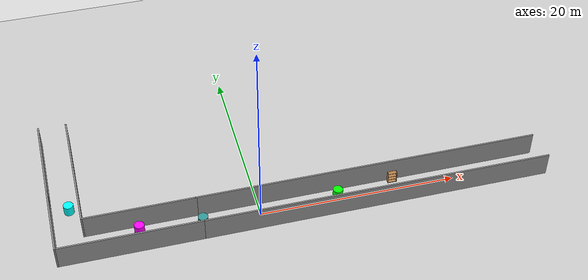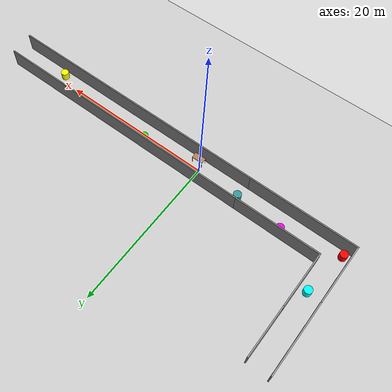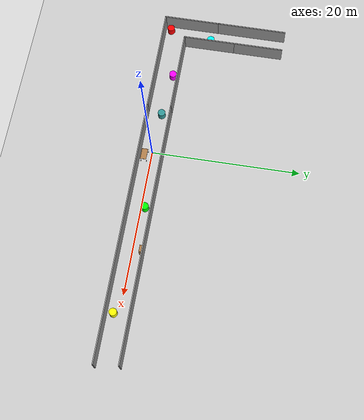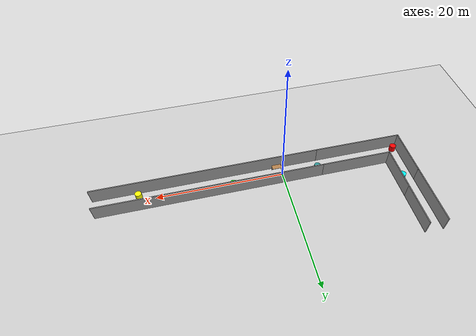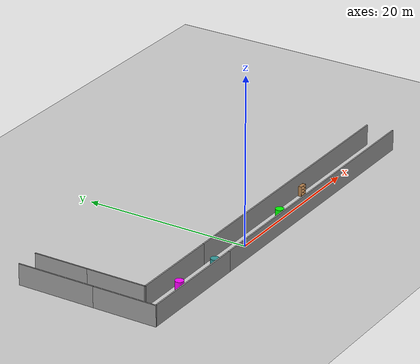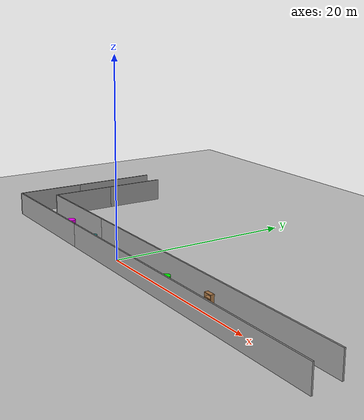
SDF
<sdf version="1.7">
 <world name="default">
  <light name="sun" type="directional">
   <pose>0 0 10 0 -0 0</pose>
   <diffuse>0.8 0.8 0.8 1</diffuse>
   <specular>0.2 0.2 0.2 1</specular>
   <attenuation>
    <range>1000</range>
    <constant>0.9</constant>
    <linear>0.01</linear>
    <quadratic>0.001</quadratic>
   </attenuation>
   <direction>-0.5 0.1 -0.9</direction>
   <spot><inner_angle>0</inner_angle><outer_angle>0</outer_angle><falloff>0</falloff></spot>
  </light>
  <model name="ground_plane">
   <static>1</static>
   <link name="link">
    <collision name="collision">
     <geometry><plane><normal>0 0 1</normal><size>100 100</size></plane></geometry>
     <surface>
      <contact><collide_bitmask>65535</collide_bitmask></contact>
      <friction><ode><mu>100</mu><mu2>50</mu2></ode></friction>
     </surface>
    </collision>
    <visual name="visual">
     <cast_shadows>0</cast_shadows>
     <geometry><plane><normal>0 0 1</normal><size>100 100</size></plane></geometry>
     <material>
      <script><uri>file://media/materials/scripts/gazebo.material</uri><name>Gazebo/Grey</name></script>
     </material>
    </visual>
   </link>
  </model>
  <gravity>0 0 -9.8</gravity>
  <magnetic_field>6e-06 2.3e-05 -4.2e-05</magnetic_field>
  <atmosphere type="adiabatic"/>
  <physics type="ode">
   <max_step_size>0.01</max_step_size>
   <real_time_factor>1</real_time_factor>
   <real_time_update_rate>100</real_time_update_rate>
  </physics>
  <scene><ambient>0.4 0.4 0.4 1</ambient><background>0.7 0.7 0.7 1</background><shadows>1</shadows></scene>
  <audio><device>default</device></audio>
  <spherical_coordinates>
   <surface_model>EARTH_WGS84</surface_model>
   <latitude_deg>0</latitude_deg>
   <longitude_deg>0</longitude_deg>
   <elevation>0</elevation>
   <heading_deg>0</heading_deg>
  </spherical_coordinates>
  <model name="world2">
   <pose>4.7262 6.81622 0 0 -0 0</pose>
   <link name="Wall_12">
    <collision name="Wall_12_Collision">
     <geometry><box><size>7.75 0.15 2.5</size></box></geometry>
     <pose>0 0 1.25 0 -0 0</pose>
    </collision>
    <visual name="Wall_12_Visual">
     <pose>0 0 1.25 0 -0 0</pose>
     <geometry><box><size>7.75 0.15 2.5</size></box></geometry>
     <material>
      <script><uri>file://media/materials/scripts/gazebo.material</uri><name>Gazebo/Grey</name></script>
      <ambient>1 1 1 1</ambient>
     </material>
     <meta><layer>0</layer></meta>
    </visual>
    <pose>-24.6986 -4.675 0 0 -0 1.5708</pose>
   </link>
   <link name="Wall_14">
    <collision name="Wall_14_Collision">
     <geometry><box><size>11.25 0.15 2.5</size></box></geometry>
     <pose>0 0 1.25 0 -0 0</pose>
    </collision>
    <visual name="Wall_14_Visual">
     <pose>0 0 1.25 0 -0 0</pose>
     <geometry><box><size>11.25 0.15 2.5</size></box></geometry>
     <material>
      <script><uri>file://media/materials/scripts/gazebo.material</uri><name>Gazebo/Grey</name></script>
      <ambient>1 1 1 1</ambient>
     </material>
     <meta><layer>0</layer></meta>
    </visual>
    <pose>-16.3037 -5.29947 0 0 -0 3.14159</pose>
   </link>
   <link name="Wall_16">
    <collision name="Wall_16_Collision">
     <geometry><box><size>7.25 0.15 2.5</size></box></geometry>
     <pose>0 0 1.25 0 -0 0</pose>
    </collision>
    <visual name="Wall_16_Visual">
     <pose>0 0 1.25 0 -0 0</pose>
     <geometry><box><size>7.25 0.15 2.5</size></box></geometry>
     <material>
      <script><uri>file://media/materials/scripts/gazebo.material</uri><name>Gazebo/Grey</name></script>
      <ambient>1 1 1 1</ambient>
     </material>
     <meta><layer>0</layer></meta>
    </visual>
    <pose>-21.8537 -1.74947 0 0 -0 1.5708</pose>
   </link>
   <link name="Wall_18">
    <collision name="Wall_18_Collision">
     <geometry><box><size>9.5 0.15 2.5</size></box></geometry>
     <pose>0 0 1.25 0 -0 0</pose>
    </collision>
    <visual name="Wall_18_Visual">
     <pose>0 0 1.25 0 -0 0</pose>
     <geometry><box><size>9.5 0.15 2.5</size></box></geometry>
     <material>
      <script><uri>file://media/materials/scripts/gazebo.material</uri><name>Gazebo/Grey</name></script>
      <ambient>1 1 1 1</ambient>
     </material>
     <meta><layer>0</layer></meta>
    </visual>
    <pose>-24.6986 3.8 0 0 -0 1.5708</pose>
   </link>
   <link name="Wall_20">
    <collision name="Wall_20_Collision">
     <geometry><box><size>6.75 0.15 2.5</size></box></geometry>
     <pose>0 0 1.25 0 -0 0</pose>
    </collision>
    <visual name="Wall_20_Visual">
     <pose>0 0 1.25 0 -0 0</pose>
     <geometry><box><size>6.75 0.15 2.5</size></box></geometry>
     <material>
      <script><uri>file://media/materials/scripts/gazebo.material</uri><name>Gazebo/Grey</name></script>
      <ambient>1 1 1 1</ambient>
     </material>
     <meta><layer>0</layer></meta>
    </visual>
    <pose>-21.8537 5.10053 0 0 -0 1.5708</pose>
   </link>
   <link name="Wall_24">
    <collision name="Wall_24_Collision">
     <geometry><box><size>35.5 0.15 2.5</size></box></geometry>
     <pose>0 0 1.25 0 -0 0</pose>
    </collision>
    <visual name="Wall_24_Visual">
     <pose>0 0 1.25 0 -0 0</pose>
     <geometry><box><size>35.5 0.15 2.5</size></box></geometry>
     <material>
      <script><uri>file://media/materials/scripts/gazebo.material</uri><name>Gazebo/Grey</name></script>
      <ambient>1 1 1 1</ambient>
     </material>
     <meta><layer>0</layer></meta>
    </visual>
    <pose>7.02355 -8.475 0 0 -0 0</pose>
   </link>
   <link name="Wall_27">
    <collision name="Wall_27_Collision">
     <geometry><box><size>35.25 0.15 2.5</size></box></geometry>
     <pose>0 0 1.25 0 -0 0</pose>
    </collision>
    <visual name="Wall_27_Visual">
     <pose>0 0 1.25 0 -0 0</pose>
     <geometry><box><size>35.25 0.15 2.5</size></box></geometry>
     <material>
      <script><uri>file://media/materials/scripts/gazebo.material</uri><name>Gazebo/Grey</name></script>
      <ambient>1 1 1 1</ambient>
     </material>
     <meta><layer>0</layer></meta>
    </visual>
    <pose>6.79625 -5.29947 0 0 -0 0</pose>
   </link>
   <link name="Wall_9">
    <collision name="Wall_9_Collision">
     <geometry><box><size>14.1971 0.15 2.5</size></box></geometry>
     <pose>0 0 1.25 0 -0 0</pose>
    </collision>
    <visual name="Wall_9_Visual">
     <pose>0 0 1.25 0 -0 0</pose>
     <geometry><box><size>14.1971 0.15 2.5</size></box></geometry>
     <material>
      <script><uri>file://media/materials/scripts/gazebo.material</uri><name>Gazebo/Grey</name></script>
      <ambient>1 1 1 1</ambient>
     </material>
     <meta><layer>0</layer></meta>
    </visual>
    <pose>-17.675 -8.475 0 0 -0 3.14159</pose>
   </link>
   <static>1</static>
  </model>
  <model name="bookshelf">
   <static>1</static>
   <link name="link">
    <inertial><mass>1</mass></inertial>
    <collision name="back">
     <pose>0 0.005 0.6 0 -0 0</pose>
     <geometry><box><size>0.9 0.01 1.2</size></box></geometry>
    </collision>
    <visual name="visual1">
     <pose>0 0.005 0.6 0 -0 0</pose>
     <geometry><box><size>0.9 0.01 1.2</size></box></geometry>
     <material>
      <script><uri>file://media/materials/scripts/gazebo.material</uri><name>Gazebo/Wood</name></script>
     </material>
    </visual>
    <collision name="left_side">
     <pose>0.45 -0.195 0.6 0 -0 0</pose>
     <geometry><box><size>0.02 0.4 1.2</size></box></geometry>
    </collision>
    <visual name="visual2">
     <pose>0.45 -0.195 0.6 0 -0 0</pose>
     <geometry><box><size>0.02 0.4 1.2</size></box></geometry>
     <material>
      <script><uri>file://media/materials/scripts/gazebo.material</uri><name>Gazebo/Wood</name></script>
     </material>
    </visual>
    <collision name="right_side">
     <pose>-0.45 -0.195 0.6 0 -0 0</pose>
     <geometry><box><size>0.02 0.4 1.2</size></box></geometry>
    </collision>
    <visual name="visual3">
     <pose>-0.45 -0.195 0.6 0 -0 0</pose>
     <geometry><box><size>0.02 0.4 1.2</size></box></geometry>
     <material>
      <script><uri>file://media/materials/scripts/gazebo.material</uri><name>Gazebo/Wood</name></script>
     </material>
    </visual>
    <collision name="bottom">
     <pose>0 -0.195 0.03 0 -0 0</pose>
     <geometry><box><size>0.88 0.4 0.06</size></box></geometry>
    </collision>
    <visual name="visual4">
     <pose>0 -0.195 0.03 0 -0 0</pose>
     <geometry><box><size>0.88 0.4 0.06</size></box></geometry>
     <material>
      <script><uri>file://media/materials/scripts/gazebo.material</uri><name>Gazebo/Wood</name></script>
     </material>
    </visual>
    <collision name="top">
     <pose>0 -0.195 1.19 0 -0 0</pose>
     <geometry><box><size>0.88 0.4 0.02</size></box></geometry>
    </collision>
    <visual name="visual5">
     <pose>0 -0.195 1.19 0 -0 0</pose>
     <geometry><box><size>0.88 0.4 0.02</size></box></geometry>
     <material>
      <script><uri>file://media/materials/scripts/gazebo.material</uri><name>Gazebo/Wood</name></script>
     </material>
    </visual>
    <collision name="low_shelf">
     <pose>0 -0.195 0.43 0 -0 0</pose>
     <geometry><box><size>0.88 0.4 0.02</size></box></geometry>
    </collision>
    <visual name="visual6">
     <pose>0 -0.195 0.43 0 -0 0</pose>
     <geometry><box><size>0.88 0.4 0.02</size></box></geometry>
     <material>
      <script><uri>file://media/materials/scripts/gazebo.material</uri><name>Gazebo/Wood</name></script>
     </material>
    </visual>
    <collision name="high_shelf">
     <pose>0 -0.195 0.8 0 -0 0</pose>
     <geometry><box><size>0.88 0.4 0.02</size></box></geometry>
    </collision>
    <visual name="visual7">
     <pose>0 -0.195 0.8 0 -0 0</pose>
     <geometry><box><size>0.88 0.4 0.02</size></box></geometry>
     <material>
      <script><uri>file://media/materials/scripts/gazebo.material</uri><name>Gazebo/Wood</name></script>
     </material>
    </visual>
   </link>
   <pose>13.9169 1.35255 0 0 -0 0</pose>
  </model>
  <model name="table">
   <static>1</static>
   <link name="link">
    <collision name="surface">
     <pose>0 0 1 0 -0 0</pose>
     <geometry><box><size>1.5 0.8 0.03</size></box></geometry>
     <surface><friction><ode><mu>0.6</mu><mu2>0.6</mu2></ode></friction></surface>
    </collision>
    <visual name="visual1">
     <pose>0 0 1 0 -0 0</pose>
     <geometry><box><size>1.5 0.8 0.03</size></box></geometry>
     <material>
      <script><uri>file://media/materials/scripts/gazebo.material</uri><name>Gazebo/Wood</name></script>
     </material>
    </visual>
    <collision name="front_left_leg_collision">
     <pose>0.68 0.38 0.5 0 -0 0</pose>
     <geometry><cylinder><radius>0.02</radius><length>1</length></cylinder></geometry>
    </collision>
    <visual name="front_left_leg_visual">
     <pose>0.68 0.38 0.5 0 -0 0</pose>
     <geometry><cylinder><radius>0.02</radius><length>1</length></cylinder></geometry>
     <material>
      <script><uri>file://media/materials/scripts/gazebo.material</uri><name>Gazebo/Grey</name></script>
     </material>
    </visual>
    <collision name="front_right_leg_collision">
     <pose>0.68 -0.38 0.5 0 -0 0</pose>
     <geometry><cylinder><radius>0.02</radius><length>1</length></cylinder></geometry>
    </collision>
    <visual name="front_right_leg_visual">
     <pose>0.68 -0.38 0.5 0 -0 0</pose>
     <geometry><cylinder><radius>0.02</radius><length>1</length></cylinder></geometry>
     <material>
      <script><uri>file://media/materials/scripts/gazebo.material</uri><name>Gazebo/Grey</name></script>
     </material>
    </visual>
    <collision name="back_right_leg_collision">
     <pose>-0.68 -0.38 0.5 0 -0 0</pose>
     <geometry><cylinder><radius>0.02</radius><length>1</length></cylinder></geometry>
    </collision>
    <visual name="back_right_leg_visual">
     <pose>-0.68 -0.38 0.5 0 -0 0</pose>
     <geometry><cylinder><radius>0.02</radius><length>1</length></cylinder></geometry>
     <material>
      <script><uri>file://media/materials/scripts/gazebo.material</uri><name>Gazebo/Grey</name></script>
     </material>
    </visual>
    <collision name="back_left_leg_collision">
     <pose>-0.68 0.38 0.5 0 -0 0</pose>
     <geometry><cylinder><radius>0.02</radius><length>1</length></cylinder></geometry>
    </collision>
    <visual name="back_left_leg_visual">
     <pose>-0.68 0.38 0.5 0 -0 0</pose>
     <geometry><cylinder><radius>0.02</radius><length>1</length></cylinder></geometry>
     <material>
      <script><uri>file://media/materials/scripts/gazebo.material</uri><name>Gazebo/Grey</name></script>
     </material>
    </visual>
   </link>
   <pose>0.751603 -0.946962 0 0 -0 0</pose>
  </model>
  <model name="unit_cylinder_0">
   <link name="link">
    <inertial>
     <mass>1</mass>
     <inertia><ixx>0.145833</ixx><ixy>0</ixy><ixz>0</ixz><iyy>0.145833</iyy><iyz>0</iyz><izz>0.125</izz></inertia>
    </inertial>
    <visual name="visual">
     <geometry><cylinder><radius>0.5</radius><length>1</length></cylinder></geometry>
     <material>
      <script><name>Gazebo/Grey</name><uri>file://media/materials/scripts/gazebo.material</uri></script>
      <shader type="pixel"><normal_map>__default__</normal_map></shader>
      <ambient>1 0 0 0</ambient>
      <diffuse>0.7 0.7 0.7 1</diffuse>
      <specular>0.01 0.01 0.01 1</specular>
      <emissive>0 0 0 1</emissive>
     </material>
    </visual>
    <collision name="collision">
     <geometry><cylinder><radius>0.5</radius><length>1</length></cylinder></geometry>
     <surface>
      <friction>
       <ode><mu>1</mu><mu2>1</mu2><fdir1>0 0 0</fdir1><slip1>0</slip1><slip2>0</slip2></ode>
       <torsional>
        <coefficient>1</coefficient>
        <patch_radius>0</patch_radius>
        <surface_radius>0</surface_radius>
        <use_patch_radius>1</use_patch_radius>
        <ode><slip>0</slip></ode>
       </torsional>
      </friction>
      <bounce><restitution_coefficient>0</restitution_coefficient><threshold>1e+06</threshold></bounce>
      <contact>
       <collide_without_contact>0</collide_without_contact>
       <collide_without_contact_bitmask>1</collide_without_contact_bitmask>
       <collide_bitmask>1</collide_bitmask>
       <ode>
        <soft_cfm>0</soft_cfm>
        <soft_erp>0.2</soft_erp>
        <kp>1e+13</kp>
        <kd>1</kd>
        <max_vel>0.01</max_vel>
        <min_depth>0</min_depth>
       </ode>
       <bullet>
        <split_impulse>1</split_impulse>
        <split_impulse_penetration_threshold>-0.01</split_impulse_penetration_threshold>
        <soft_cfm>0</soft_cfm>
        <soft_erp>0.2</soft_erp>
        <kp>1e+13</kp>
        <kd>1</kd>
       </bullet>
      </contact>
     </surface>
    </collision>
   </link>
   <link name="link_0">
    <inertial>
     <mass>1</mass>
     <inertia><ixx>0.145833</ixx><ixy>0</ixy><ixz>0</ixz><iyy>0.145833</iyy><iyz>0</iyz><izz>0.125</izz></inertia>
    </inertial>
    <pose>27.2044 1.34727 -0 0 -0 0</pose>
    <visual name="visual">
     <geometry><cylinder><radius>0.5</radius><length>1</length></cylinder></geometry>
     <material>
      <lighting>1</lighting>
      <script><uri>file://media/materials/scripts/gazebo.material</uri><name>Gazebo/Grey</name></script>
      <shader type="pixel"><normal_map>__default__</normal_map></shader>
      <ambient>0 1 0 0</ambient>
      <diffuse>0.7 0.7 0.7 1</diffuse>
      <specular>0.01 0.01 0.01 1</specular>
      <emissive>0 0 0 1</emissive>
     </material>
    </visual>
    <collision name="collision">
     <geometry><cylinder><radius>0.5</radius><length>1</length></cylinder></geometry>
     <surface>
      <friction>
       <ode><mu>1</mu><mu2>1</mu2><fdir1>0 0 0</fdir1><slip1>0</slip1><slip2>0</slip2></ode>
       <torsional>
        <coefficient>1</coefficient>
        <patch_radius>0</patch_radius>
        <surface_radius>0</surface_radius>
        <use_patch_radius>1</use_patch_radius>
        <ode><slip>0</slip></ode>
       </torsional>
      </friction>
      <bounce><restitution_coefficient>0</restitution_coefficient><threshold>1e+06</threshold></bounce>
      <contact>
       <collide_without_contact>0</collide_without_contact>
       <collide_without_contact_bitmask>1</collide_without_contact_bitmask>
       <collide_bitmask>1</collide_bitmask>
       <ode>
        <soft_cfm>0</soft_cfm>
        <soft_erp>0.2</soft_erp>
        <kp>1e+13</kp>
        <kd>1</kd>
        <max_vel>0.01</max_vel>
        <min_depth>0</min_depth>
       </ode>
       <bullet>
        <split_impulse>1</split_impulse>
        <split_impulse_penetration_threshold>-0.01</split_impulse_penetration_threshold>
        <soft_cfm>0</soft_cfm>
        <soft_erp>0.2</soft_erp>
        <kp>1e+13</kp>
        <kd>1</kd>
       </bullet>
      </contact>
     </surface>
    </collision>
   </link>
   <static>0</static>
   <pose>-19.1658 -0.821597 0.499061 0.00135 0.00131 -0.000111</pose>
  </model>
  <model name="unit_cylinder_2">
   <link name="link">
    <inertial>
     <mass>1</mass>
     <inertia><ixx>0.145833</ixx><ixy>0</ixy><ixz>0</ixz><iyy>0.145833</iyy><iyz>0</iyz><izz>0.125</izz></inertia>
    </inertial>
    <visual name="visual">
     <geometry><cylinder><radius>0.5</radius><length>1</length></cylinder></geometry>
     <material>
      <script><name>Gazebo/Grey</name><uri>file://media/materials/scripts/gazebo.material</uri></script>
      <shader type="pixel"><normal_map>__default__</normal_map></shader>
      <ambient>1 1 0 0</ambient>
      <diffuse>0.7 0.7 0.7 1</diffuse>
      <specular>0.01 0.01 0.01 1</specular>
      <emissive>0 0 0 1</emissive>
     </material>
    </visual>
    <collision name="collision">
     <geometry><cylinder><radius>0.5</radius><length>1</length></cylinder></geometry>
     <surface>
      <friction>
       <ode><mu>1</mu><mu2>1</mu2><fdir1>0 0 0</fdir1><slip1>0</slip1><slip2>0</slip2></ode>
       <torsional>
        <coefficient>1</coefficient>
        <patch_radius>0</patch_radius>
        <surface_radius>0</surface_radius>
        <use_patch_radius>1</use_patch_radius>
        <ode><slip>0</slip></ode>
       </torsional>
      </friction>
      <bounce><restitution_coefficient>0</restitution_coefficient><threshold>1e+06</threshold></bounce>
      <contact>
       <collide_without_contact>0</collide_without_contact>
       <collide_without_contact_bitmask>1</collide_without_contact_bitmask>
       <collide_bitmask>1</collide_bitmask>
       <ode>
        <soft_cfm>0</soft_cfm>
        <soft_erp>0.2</soft_erp>
        <kp>1e+13</kp>
        <kd>1</kd>
        <max_vel>0.01</max_vel>
        <min_depth>0</min_depth>
       </ode>
       <bullet>
        <split_impulse>1</split_impulse>
        <split_impulse_penetration_threshold>-0.01</split_impulse_penetration_threshold>
        <soft_cfm>0</soft_cfm>
        <soft_erp>0.2</soft_erp>
        <kp>1e+13</kp>
        <kd>1</kd>
       </bullet>
      </contact>
     </surface>
    </collision>
   </link>
   <static>0</static>
   <pose>22.4918 -0.752143 0.499061 0.001338 0.001323 -4.1e-05</pose>
  </model>
  <model name="unit_cylinder_1">
   <link name="link">
    <inertial>
     <mass>1</mass>
     <inertia><ixx>0.145833</ixx><ixy>0</ixy><ixz>0</ixz><iyy>0.145833</iyy><iyz>0</iyz><izz>0.125</izz></inertia>
    </inertial>
    <visual name="visual">
     <geometry><cylinder><radius>0.5</radius><length>1</length></cylinder></geometry>
     <material>
      <script><name>Gazebo/Grey</name><uri>file://media/materials/scripts/gazebo.material</uri></script>
      <shader type="pixel"><normal_map>__default__</normal_map></shader>
      <ambient>1 0 1 0</ambient>
      <diffuse>0.7 0.7 0.7 1</diffuse>
      <specular>0.01 0.01 0.01 1</specular>
      <emissive>0 0 0 1</emissive>
     </material>
    </visual>
    <collision name="collision">
     <geometry><cylinder><radius>0.5</radius><length>1</length></cylinder></geometry>
     <surface>
      <friction>
       <ode><mu>1</mu><mu2>1</mu2><fdir1>0 0 0</fdir1><slip1>0</slip1><slip2>0</slip2></ode>
       <torsional>
        <coefficient>1</coefficient>
        <patch_radius>0</patch_radius>
        <surface_radius>0</surface_radius>
        <use_patch_radius>1</use_patch_radius>
        <ode><slip>0</slip></ode>
       </torsional>
      </friction>
      <bounce><restitution_coefficient>0</restitution_coefficient><threshold>1e+06</threshold></bounce>
      <contact>
       <collide_without_contact>0</collide_without_contact>
       <collide_without_contact_bitmask>1</collide_without_contact_bitmask>
       <collide_bitmask>1</collide_bitmask>
       <ode>
        <soft_cfm>0</soft_cfm>
        <soft_erp>0.2</soft_erp>
        <kp>1e+13</kp>
        <kd>1</kd>
        <max_vel>0.01</max_vel>
        <min_depth>0</min_depth>
       </ode>
       <bullet>
        <split_impulse>1</split_impulse>
        <split_impulse_penetration_threshold>-0.01</split_impulse_penetration_threshold>
        <soft_cfm>0</soft_cfm>
        <soft_erp>0.2</soft_erp>
        <kp>1e+13</kp>
        <kd>1</kd>
       </bullet>
      </contact>
     </surface>
    </collision>
   </link>
   <static>0</static>
   <pose>-11.8494 0.739272 0.499061 0.001341 0.00132 -5.8e-05</pose>
  </model>
  <model name="unit_cylinder_3">
   <link name="link">
    <inertial>
     <mass>1</mass>
     <inertia><ixx>0.145833</ixx><ixy>0</ixy><ixz>0</ixz><iyy>0.145833</iyy><iyz>0</iyz><izz>0.125</izz></inertia>
    </inertial>
    <visual name="visual">
     <geometry><cylinder><radius>0.5</radius><length>1</length></cylinder></geometry>
     <material>
      <script><name>Gazebo/Grey</name><uri>file://media/materials/scripts/gazebo.material</uri></script>
      <shader type="pixel"><normal_map>__default__</normal_map></shader>
      <ambient>0 1 1 0</ambient>
      <diffuse>0.7 0.7 0.7 1</diffuse>
      <specular>0.01 0.01 0.01 1</specular>
      <emissive>0 0 0 1</emissive>
     </material>
    </visual>
    <collision name="collision">
     <geometry><cylinder><radius>0.5</radius><length>1</length></cylinder></geometry>
     <surface>
      <friction>
       <ode><mu>1</mu><mu2>1</mu2><fdir1>0 0 0</fdir1><slip1>0</slip1><slip2>0</slip2></ode>
       <torsional>
        <coefficient>1</coefficient>
        <patch_radius>0</patch_radius>
        <surface_radius>0</surface_radius>
        <use_patch_radius>1</use_patch_radius>
        <ode><slip>0</slip></ode>
       </torsional>
      </friction>
      <bounce><restitution_coefficient>0</restitution_coefficient><threshold>1e+06</threshold></bounce>
      <contact>
       <collide_without_contact>0</collide_without_contact>
       <collide_without_contact_bitmask>1</collide_without_contact_bitmask>
       <collide_bitmask>1</collide_bitmask>
       <ode>
        <soft_cfm>0</soft_cfm>
        <soft_erp>0.2</soft_erp>
        <kp>1e+13</kp>
        <kd>1</kd>
        <max_vel>0.01</max_vel>
        <min_depth>0</min_depth>
       </ode>
       <bullet>
        <split_impulse>1</split_impulse>
        <split_impulse_penetration_threshold>-0.01</split_impulse_penetration_threshold>
        <soft_cfm>0</soft_cfm>
        <soft_erp>0.2</soft_erp>
        <kp>1e+13</kp>
        <kd>1</kd>
       </bullet>
      </contact>
     </surface>
    </collision>
   </link>
   <static>0</static>
   <pose>-18.1828 5.07086 0.499061 0.001333 0.001327 -1.8e-05</pose>
  </model>
  <model name="unit_cylinder">
   <link name="link">
    <inertial>
     <mass>1</mass>
     <inertia><ixx>0.145833</ixx><ixy>0</ixy><ixz>0</ixz><iyy>0.145833</iyy><iyz>0</iyz><izz>0.125</izz></inertia>
    </inertial>
    <visual name="visual">
     <geometry><cylinder><radius>0.5</radius><length>1</length></cylinder></geometry>
     <material>
      <script><name>Gazebo/Grey</name><uri>file://media/materials/scripts/gazebo.material</uri></script>
      <shader type="pixel"><normal_map>__default__</normal_map></shader>
      <ambient>0.2 0.6 0.6 0</ambient>
      <diffuse>0.7 0.7 0.7 1</diffuse>
      <specular>0.01 0.01 0.01 1</specular>
      <emissive>0 0 0 1</emissive>
     </material>
    </visual>
    <collision name="collision">
     <geometry><cylinder><radius>0.5</radius><length>1</length></cylinder></geometry>
     <surface>
      <friction>
       <ode><mu>1</mu><mu2>1</mu2><fdir1>0 0 0</fdir1><slip1>0</slip1><slip2>0</slip2></ode>
       <torsional>
        <coefficient>1</coefficient>
        <patch_radius>0</patch_radius>
        <surface_radius>0</surface_radius>
        <use_patch_radius>1</use_patch_radius>
        <ode><slip>0</slip></ode>
       </torsional>
      </friction>
      <bounce><restitution_coefficient>0</restitution_coefficient><threshold>1e+06</threshold></bounce>
      <contact>
       <collide_without_contact>0</collide_without_contact>
       <collide_without_contact_bitmask>1</collide_without_contact_bitmask>
       <collide_bitmask>1</collide_bitmask>
       <ode>
        <soft_cfm>0</soft_cfm>
        <soft_erp>0.2</soft_erp>
        <kp>1e+13</kp>
        <kd>1</kd>
        <max_vel>0.01</max_vel>
        <min_depth>0</min_depth>
       </ode>
       <bullet>
        <split_impulse>1</split_impulse>
        <split_impulse_penetration_threshold>-0.01</split_impulse_penetration_threshold>
        <soft_cfm>0</soft_cfm>
        <soft_erp>0.2</soft_erp>
        <kp>1e+13</kp>
        <kd>1</kd>
       </bullet>
      </contact>
     </surface>
    </collision>
   </link>
   <static>0</static>
   <pose>-5.68461 0.244658 0.499997 3e-06 4e-06 -0</pose>
  </model>
 </world>
</sdf>
